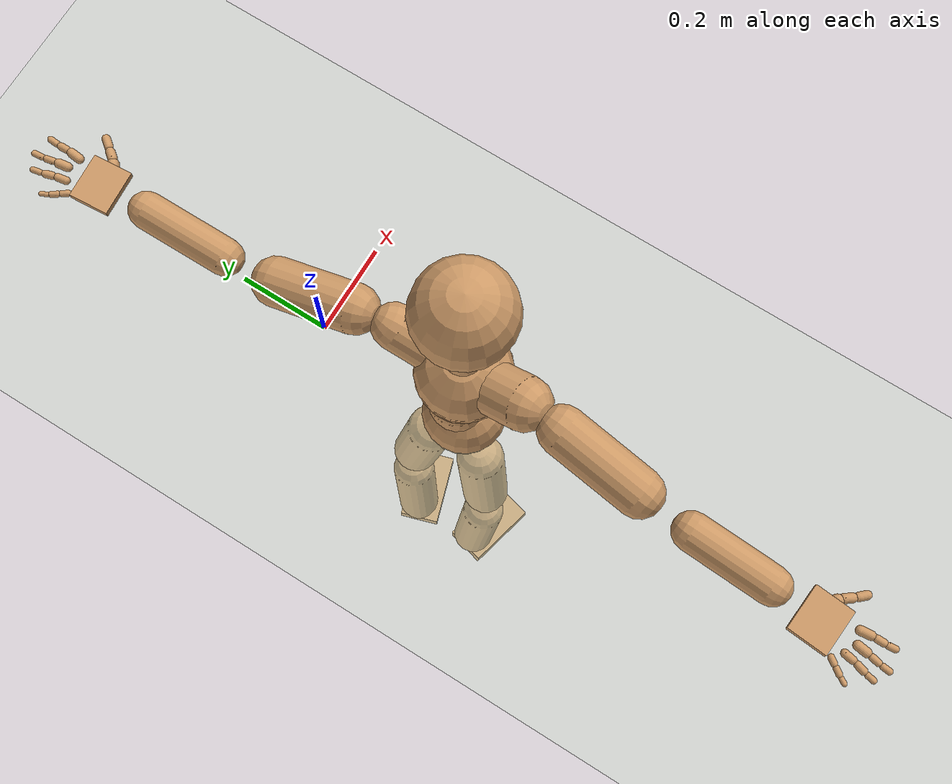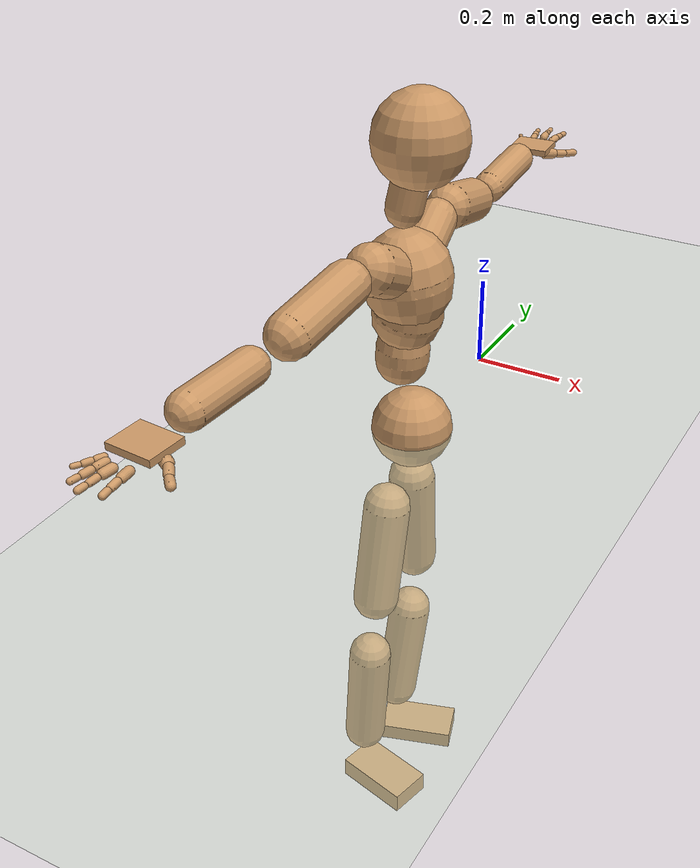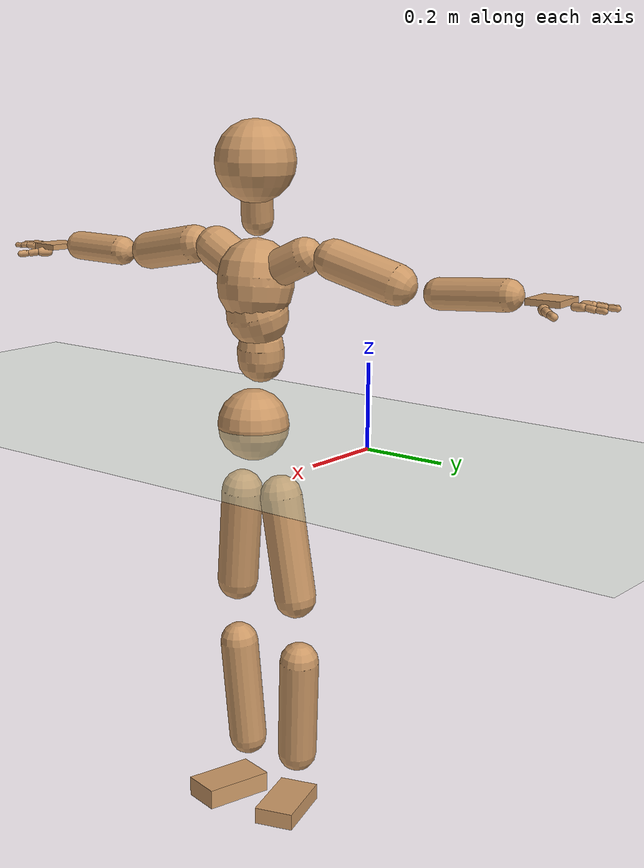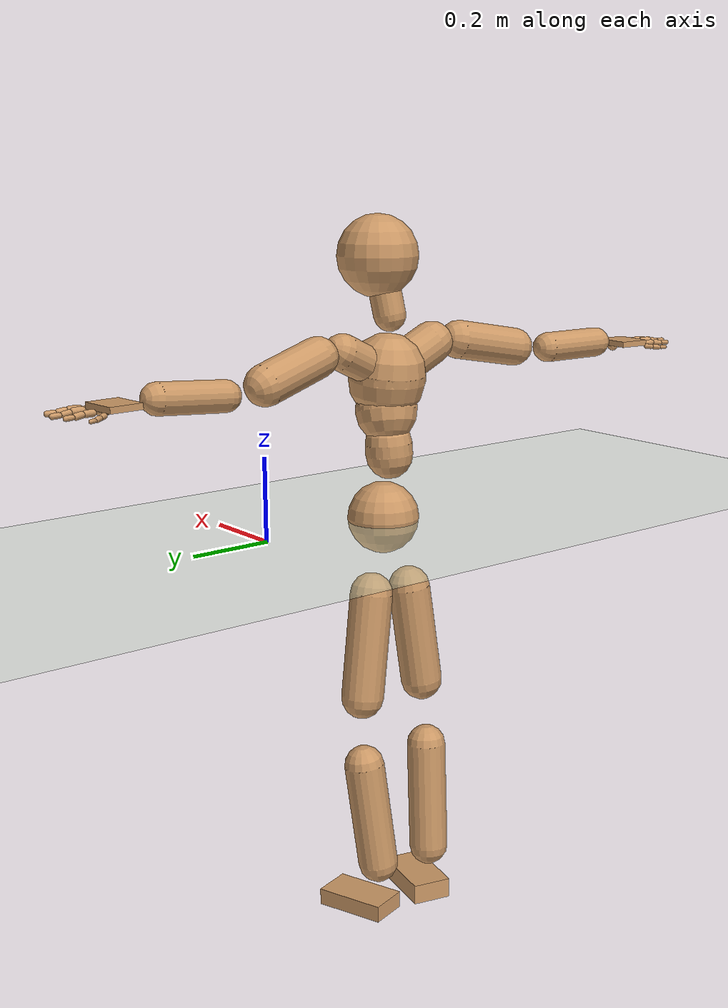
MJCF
<mujoco model="humanoid">
  <compiler coordinate="local" angle="radian"/>
  <default>
    <joint damping="0.0" armature="0.01" stiffness="0.0" limited="true"/>
    <geom conaffinity="1" condim="3" contype="7" margin="0.001" rgba="0.8 0.6 .4 1"/>
  </default>
  <asset>
    <texture type="skybox" builtin="gradient" rgb1=".4 .5 .6" rgb2="0 0 0" width="100" height="100"/>
    <texture builtin="flat" height="1278" mark="cross" markrgb="1 1 1" name="texgeom" random="0.01" rgb1="0.8 0.6 0.4" rgb2="0.8 0.6 0.4" type="cube" width="127"/>
    <texture builtin="checker" height="100" name="texplane" rgb1="0 0 0" rgb2="0.8 0.8 0.8" type="2d" width="100"/>
    <material name="MatPlane" reflectance="0.5" shininess="1" specular="1" texrepeat="60 60" texture="texplane"/>
    <material name="geom" texture="texgeom" texuniform="true"/>
  </asset>
  <worldbody>
    <light cutoff="100" diffuse="1 1 1" dir="-0 0 -1.3" directional="true" exponent="1" pos="0 0 1.3" specular=".1 .1 .1"/>
    <geom conaffinity="1" condim="3" name="floor" pos="0 0 0" rgba="0.8 0.9 0.8 1" size="100 100 .2" type="plane" material="MatPlane"/>
    <body name="Pelvis" pos="0.0005 -0.3444 0.0051">
      <freejoint name="Pelvis"/>
      <geom type="sphere" contype="1" conaffinity="1" density="500" size="0.0879" pos="0.0000 0.0000 0.0000" name="Pelvis"/>
      <body name="L_Hip" pos="-0.0272 0.0498 -0.0909">
        <joint name="L_Hip_x" type="hinge" pos="0 0 0" axis="1 0 0" stiffness="800" damping="80" armature="0.02" range="-180.0000 180.0000"/>
        <joint name="L_Hip_y" type="hinge" pos="0 0 0" axis="0 1 0" stiffness="800" damping="80" armature="0.02" range="-180.0000 180.0000"/>
        <joint name="L_Hip_z" type="hinge" pos="0 0 0" axis="0 0 1" stiffness="800" damping="80" armature="0.02" range="-180.0000 180.0000"/>
        <geom type="capsule" contype="1" conaffinity="1" density="500" fromto="-0.0034 0.0127 -0.0863 -0.0138 0.0508 -0.3453" size="0.0524" name="L_Hip"/>
        <body name="L_Knee" pos="-0.0172 0.0635 -0.4316">
          <joint name="L_Knee_x" type="hinge" pos="0 0 0" axis="1 0 0" stiffness="800" damping="80" armature="0.02" range="-180.0000 180.0000"/>
          <joint name="L_Knee_y" type="hinge" pos="0 0 0" axis="0 1 0" stiffness="800" damping="80" armature="0.02" range="-180.0000 180.0000"/>
          <joint name="L_Knee_z" type="hinge" pos="0 0 0" axis="0 0 1" stiffness="800" damping="80" armature="0.02" range="-180.0000 180.0000"/>
          <geom type="capsule" contype="1" conaffinity="1" density="500" fromto="-0.0077 -0.0081 -0.0889 -0.0309 -0.0322 -0.3555" size="0.0498" name="L_Knee"/>
          <body name="L_Ankle" pos="-0.0386 -0.0403 -0.4444">
            <joint name="L_Ankle_x" type="hinge" pos="0 0 0" axis="1 0 0" stiffness="800" damping="80" armature="0.02" range="-180.0000 180.0000"/>
            <joint name="L_Ankle_y" type="hinge" pos="0 0 0" axis="0 1 0" stiffness="800" damping="80" armature="0.02" range="-180.0000 180.0000"/>
            <joint name="L_Ankle_z" type="hinge" pos="0 0 0" axis="0 0 1" stiffness="800" damping="80" armature="0.02" range="-180.0000 180.0000"/>
            <geom type="box" contype="1" conaffinity="1" density="500" pos="0.0672 0.0211 -0.0326" size="0.0901 0.0499 0.0212" quat="0.9884 0.0000 0.0000 0.1516" name="L_Ankle"/>
            <body name="L_Toe" pos="0.1344 0.0422 -0.0651">
              <joint name="L_Toe_x" type="hinge" pos="0 0 0" axis="1 0 0" stiffness="500" damping="50" armature="0.02" range="-180.0000 180.0000"/>
              <joint name="L_Toe_y" type="hinge" pos="0 0 0" axis="0 1 0" stiffness="500" damping="50" armature="0.02" range="-180.0000 180.0000"/>
              <joint name="L_Toe_z" type="hinge" pos="0 0 0" axis="0 0 1" stiffness="500" damping="50" armature="0.02" range="-180.0000 180.0000"/>
              <geom type="box" contype="1" conaffinity="1" density="500" pos="0.0000 0.0000 0.0321" size="0.001 0.0024 0.001" quat="0.9877 0.0000 0.0000 0.1561" name="L_Toe"/>
            </body>
          </body>
        </body>
      </body>
      <body name="R_Hip" pos="-0.0226 -0.0506 -0.1002">
        <joint name="R_Hip_x" type="hinge" pos="0 0 0" axis="1 0 0" stiffness="800" damping="80" armature="0.02" range="-180.0000 180.0000"/>
        <joint name="R_Hip_y" type="hinge" pos="0 0 0" axis="0 1 0" stiffness="800" damping="80" armature="0.02" range="-180.0000 180.0000"/>
        <joint name="R_Hip_z" type="hinge" pos="0 0 0" axis="0 0 1" stiffness="800" damping="80" armature="0.02" range="-180.0000 180.0000"/>
        <geom type="capsule" contype="1" conaffinity="1" density="500" fromto="-0.0045 -0.0098 -0.0828 -0.0181 -0.0392 -0.3314" size="0.0518" name="R_Hip"/>
        <body name="R_Knee" pos="-0.0227 -0.049 -0.4142">
          <joint name="R_Knee_x" type="hinge" pos="0 0 0" axis="1 0 0" stiffness="800" damping="80" armature="0.02" range="-180.0000 180.0000"/>
          <joint name="R_Knee_y" type="hinge" pos="0 0 0" axis="0 1 0" stiffness="800" damping="80" armature="0.02" range="-180.0000 180.0000"/>
          <joint name="R_Knee_z" type="hinge" pos="0 0 0" axis="0 0 1" stiffness="800" damping="80" armature="0.02" range="-180.0000 180.0000"/>
          <geom type="capsule" contype="1" conaffinity="1" density="500" fromto="-0.0074 0.0031 -0.0920 -0.0297 0.0126 -0.3678" size="0.0491" name="R_Knee"/>
          <body name="R_Ankle" pos="-0.0371 0.0157 -0.4598">
            <joint name="R_Ankle_x" type="hinge" pos="0 0 0" axis="1 0 0" stiffness="800" damping="80" armature="0.02" range="-180.0000 180.0000"/>
            <joint name="R_Ankle_y" type="hinge" pos="0 0 0" axis="0 1 0" stiffness="800" damping="80" armature="0.02" range="-180.0000 180.0000"/>
            <joint name="R_Ankle_z" type="hinge" pos="0 0 0" axis="0 0 1" stiffness="800" damping="80" armature="0.02" range="-180.0000 180.0000"/>
            <geom type="box" contype="1" conaffinity="1" density="500" pos="0.0703 -0.0173 -0.0320" size="0.0901 0.0501 0.0257" quat="0.9927 0.0000 0.0000 -0.1206" name="R_Ankle"/>
            <body name="R_Toe" pos="0.1406 -0.0347 -0.0641">
              <joint name="R_Toe_x" type="hinge" pos="0 0 0" axis="1 0 0" stiffness="500" damping="50" armature="0.02" range="-180.0000 180.0000"/>
              <joint name="R_Toe_y" type="hinge" pos="0 0 0" axis="0 1 0" stiffness="500" damping="50" armature="0.02" range="-180.0000 180.0000"/>
              <joint name="R_Toe_z" type="hinge" pos="0 0 0" axis="0 0 1" stiffness="500" damping="50" armature="0.02" range="-180.0000 180.0000"/>
              <geom type="box" contype="1" conaffinity="1" density="500" pos="0.0000 0.0000 0.0271" size="0.0009 0.0024 0.001" quat="0.9937 0.0000 0.0000 -0.1124" name="R_Toe"/>
            </body>
          </body>
        </body>
      </body>
      <body name="Torso" pos="-0.0295 -0.0002 0.1028">
        <joint name="Torso_x" type="hinge" pos="0 0 0" axis="1 0 0" stiffness="1000" damping="100" armature="0.02" range="-180.0000 180.0000"/>
        <joint name="Torso_y" type="hinge" pos="0 0 0" axis="0 1 0" stiffness="1000" damping="100" armature="0.02" range="-180.0000 180.0000"/>
        <joint name="Torso_z" type="hinge" pos="0 0 0" axis="0 0 1" stiffness="1000" damping="100" armature="0.02" range="-180.0000 180.0000"/>
        <geom type="capsule" contype="1" conaffinity="1" density="500" fromto="0.0045 0.0031 0.0839 0.0030 0.0020 0.0559" size="0.057" name="Torso"/>
        <body name="Spine" pos="0.0076 0.0051 0.1398">
          <joint name="Spine_x" type="hinge" pos="0 0 0" axis="1 0 0" stiffness="1000" damping="100" armature="0.02" range="-180.0000 180.0000"/>
          <joint name="Spine_y" type="hinge" pos="0 0 0" axis="0 1 0" stiffness="1000" damping="100" armature="0.02" range="-180.0000 180.0000"/>
          <joint name="Spine_z" type="hinge" pos="0 0 0" axis="0 0 1" stiffness="1000" damping="100" armature="0.02" range="-180.0000 180.0000"/>
          <geom type="capsule" contype="1" conaffinity="1" density="500" fromto="0.0089 -0.0040 0.0320 0.0059 -0.0027 0.0213" size="0.0751" name="Spine"/>
          <body name="Chest" pos="0.0148 -0.0067 0.0533">
            <joint name="Chest_x" type="hinge" pos="0 0 0" axis="1 0 0" stiffness="1000" damping="100" armature="0.02" range="-180.0000 180.0000"/>
            <joint name="Chest_y" type="hinge" pos="0 0 0" axis="0 1 0" stiffness="1000" damping="100" armature="0.02" range="-180.0000 180.0000"/>
            <joint name="Chest_z" type="hinge" pos="0 0 0" axis="0 0 1" stiffness="1000" damping="100" armature="0.02" range="-180.0000 180.0000"/>
            <geom type="capsule" contype="1" conaffinity="1" density="500" fromto="-0.0073 -0.0009 0.0619 -0.0049 -0.0006 0.0413" size="0.0928" name="Chest"/>
            <body name="Neck" pos="-0.0214 -0.0059 0.1617">
              <joint name="Neck_x" type="hinge" pos="0 0 0" axis="1 0 0" stiffness="500" damping="50" armature="0.02" range="-180.0000 180.0000"/>
              <joint name="Neck_y" type="hinge" pos="0 0 0" axis="0 1 0" stiffness="500" damping="50" armature="0.02" range="-180.0000 180.0000"/>
              <joint name="Neck_z" type="hinge" pos="0 0 0" axis="0 0 1" stiffness="500" damping="50" armature="0.02" range="-180.0000 180.0000"/>
              <geom type="capsule" contype="1" conaffinity="1" density="500" fromto="0.0063 0.0038 0.0342 0.0251 0.0152 0.1368" size="0.0385" name="Neck"/>
              <body name="Head" pos="0.0314 0.019 0.171">
                <joint name="Head_x" type="hinge" pos="0 0 0" axis="1 0 0" stiffness="500" damping="50" armature="0.02" range="-180.0000 180.0000"/>
                <joint name="Head_y" type="hinge" pos="0 0 0" axis="0 1 0" stiffness="500" damping="50" armature="0.02" range="-180.0000 180.0000"/>
                <joint name="Head_z" type="hinge" pos="0 0 0" axis="0 0 1" stiffness="500" damping="50" armature="0.02" range="-180.0000 180.0000"/>
                <geom type="sphere" contype="1" conaffinity="1" density="500" size="0.0968" pos="0.0000 0.0000 0.0000" name="Head"/>
              </body>
            </body>
            <body name="L_Thorax" pos="-0.0058 0.0395 0.0739">
              <joint name="L_Thorax_x" type="hinge" pos="0 0 0" axis="1 0 0" stiffness="500" damping="50" armature="0.02" range="-180.0000 180.0000"/>
              <joint name="L_Thorax_y" type="hinge" pos="0 0 0" axis="0 1 0" stiffness="500" damping="50" armature="0.02" range="-180.0000 180.0000"/>
              <joint name="L_Thorax_z" type="hinge" pos="0 0 0" axis="0 0 1" stiffness="500" damping="50" armature="0.02" range="-180.0000 180.0000"/>
              <geom type="capsule" contype="1" conaffinity="1" density="500" fromto="-0.0027 0.0250 0.0118 -0.0107 0.1001 0.0472" size="0.0442" name="L_Thorax"/>
              <body name="L_Shoulder" pos="-0.0134 0.1251 0.059">
                <joint name="L_Shoulder_x" type="hinge" pos="0 0 0" axis="1 0 0" stiffness="500" damping="50" armature="0.02" range="-180.0000 180.0000"/>
                <joint name="L_Shoulder_y" type="hinge" pos="0 0 0" axis="0 1 0" stiffness="500" damping="50" armature="0.02" range="-180.0000 180.0000"/>
                <joint name="L_Shoulder_z" type="hinge" pos="0 0 0" axis="0 0 1" stiffness="500" damping="50" armature="0.02" range="-180.0000 180.0000"/>
                <geom type="capsule" contype="1" conaffinity="1" density="500" fromto="-0.0070 0.0534 -0.0149 -0.0281 0.2134 -0.0597" size="0.0481" name="L_Shoulder"/>
                <body name="L_Elbow" pos="-0.0351 0.2668 -0.0746">
                  <joint name="L_Elbow_x" type="hinge" pos="0 0 0" axis="1 0 0" stiffness="500" damping="50" armature="0.02" range="-720.0000 720.0000"/>
                  <joint name="L_Elbow_y" type="hinge" pos="0 0 0" axis="0 1 0" stiffness="500" damping="50" armature="0.02" range="-720.0000 720.0000"/>
                  <joint name="L_Elbow_z" type="hinge" pos="0 0 0" axis="0 0 1" stiffness="500" damping="50" armature="0.02" range="-720.0000 720.0000"/>
                  <geom type="capsule" contype="1" conaffinity="1" density="500" fromto="-0.0012 0.0568 0.0042 -0.0046 0.2273 0.0169" size="0.0363" name="L_Elbow"/>
                  <body name="L_Wrist" pos="-0.0058 0.2841 0.0211">
                    <joint name="L_Wrist_x" type="hinge" pos="0 0 0" axis="1 0 0" stiffness="300" damping="30" armature="0.02" range="-180.0000 180.0000"/>
                    <joint name="L_Wrist_y" type="hinge" pos="0 0 0" axis="0 1 0" stiffness="300" damping="30" armature="0.02" range="-180.0000 180.0000"/>
                    <joint name="L_Wrist_z" type="hinge" pos="0 0 0" axis="0 0 1" stiffness="300" damping="30" armature="0.02" range="-180.0000 180.0000"/>
                    <geom type="box" contype="1" conaffinity="1" density="500" pos="-0.0033 0.0456 -0.0063" size="0.04 0.0453 0.0071" quat="0.7322 0.0000 0.0000 -0.6810" name="L_Wrist"/>
                    <body name="L_Index1" pos="0.0187 0.1062 -0.0097">
                      <joint name="L_Index1_x" type="hinge" pos="0 0 0" axis="1 0 0" stiffness="100" damping="10" armature="0.02" range="-180.0000 180.0000"/>
                      <joint name="L_Index1_y" type="hinge" pos="0 0 0" axis="0 1 0" stiffness="100" damping="10" armature="0.02" range="-180.0000 180.0000"/>
                      <joint name="L_Index1_z" type="hinge" pos="0 0 0" axis="0 0 1" stiffness="100" damping="10" armature="0.02" range="-180.0000 180.0000"/>
                      <geom type="capsule" contype="1" conaffinity="1" density="500" fromto="0.0007 0.0066 0.0003 0.0026 0.0264 0.0011" size="0.009" name="L_Index1"/>
                      <body name="L_Index2" pos="0.0033 0.033 0.0013">
                        <joint name="L_Index2_x" type="hinge" pos="0 0 0" axis="1 0 0" stiffness="100" damping="10" armature="0.02" range="-180.0000 180.0000"/>
                        <joint name="L_Index2_y" type="hinge" pos="0 0 0" axis="0 1 0" stiffness="100" damping="10" armature="0.02" range="-180.0000 180.0000"/>
                        <joint name="L_Index2_z" type="hinge" pos="0 0 0" axis="0 0 1" stiffness="100" damping="10" armature="0.02" range="-180.0000 180.0000"/>
                        <geom type="capsule" contype="1" conaffinity="1" density="500" fromto="-0.0000 0.0047 -0.0005 -0.0000 0.0187 -0.0020" size="0.0074" name="L_Index2"/>
                        <body name="L_Index3" pos="-0.0001 0.0233 -0.0025">
                          <joint name="L_Index3_x" type="hinge" pos="0 0 0" axis="1 0 0" stiffness="100" damping="10" armature="0.02" range="-180.0000 180.0000"/>
                          <joint name="L_Index3_y" type="hinge" pos="0 0 0" axis="0 1 0" stiffness="100" damping="10" armature="0.02" range="-180.0000 180.0000"/>
                          <joint name="L_Index3_z" type="hinge" pos="0 0 0" axis="0 0 1" stiffness="100" damping="10" armature="0.02" range="-180.0000 180.0000"/>
                          <geom type="capsule" contype="1" conaffinity="1" density="500" fromto="0.0004 0.0051 -0.0001 0.0016 0.0203 -0.0004" size="0.0064" name="L_Index3"/>
                        </body>
                      </body>
                    </body>
                    <body name="L_Middle1" pos="-0.005 0.1144 -0.0076">
                      <joint name="L_Middle1_x" type="hinge" pos="0 0 0" axis="1 0 0" stiffness="100" damping="10" armature="0.02" range="-180.0000 180.0000"/>
                      <joint name="L_Middle1_y" type="hinge" pos="0 0 0" axis="0 1 0" stiffness="100" damping="10" armature="0.02" range="-180.0000 180.0000"/>
                      <joint name="L_Middle1_z" type="hinge" pos="0 0 0" axis="0 0 1" stiffness="100" damping="10" armature="0.02" range="-180.0000 180.0000"/>
                      <geom type="capsule" contype="1" conaffinity="1" density="500" fromto="-0.0009 0.0063 0.0000 -0.0037 0.0252 0.0001" size="0.0091" name="L_Middle1"/>
                      <body name="L_Middle2" pos="-0.0046 0.0315 0.0001">
                        <joint name="L_Middle2_x" type="hinge" pos="0 0 0" axis="1 0 0" stiffness="100" damping="10" armature="0.02" range="-180.0000 180.0000"/>
                        <joint name="L_Middle2_y" type="hinge" pos="0 0 0" axis="0 1 0" stiffness="100" damping="10" armature="0.02" range="-180.0000 180.0000"/>
                        <joint name="L_Middle2_z" type="hinge" pos="0 0 0" axis="0 0 1" stiffness="100" damping="10" armature="0.02" range="-180.0000 180.0000"/>
                        <geom type="capsule" contype="1" conaffinity="1" density="500" fromto="-0.0009 0.0049 -0.0005 -0.0035 0.0194 -0.0019" size="0.0068" name="L_Middle2"/>
                        <body name="L_Middle3" pos="-0.0044 0.0243 -0.0024">
                          <joint name="L_Middle3_x" type="hinge" pos="0 0 0" axis="1 0 0" stiffness="100" damping="10" armature="0.02" range="-180.0000 180.0000"/>
                          <joint name="L_Middle3_y" type="hinge" pos="0 0 0" axis="0 1 0" stiffness="100" damping="10" armature="0.02" range="-180.0000 180.0000"/>
                          <joint name="L_Middle3_z" type="hinge" pos="0 0 0" axis="0 0 1" stiffness="100" damping="10" armature="0.02" range="-180.0000 180.0000"/>
                          <geom type="capsule" contype="1" conaffinity="1" density="500" fromto="-0.0005 0.0053 -0.0001 -0.0019 0.0210 -0.0003" size="0.0062" name="L_Middle3"/>
                        </body>
                      </body>
                    </body>
                    <body name="L_Pinky1" pos="-0.0441 0.0895 -0.0157">
                      <joint name="L_Pinky1_x" type="hinge" pos="0 0 0" axis="1 0 0" stiffness="100" damping="10" armature="0.02" range="-180.0000 180.0000"/>
                      <joint name="L_Pinky1_y" type="hinge" pos="0 0 0" axis="0 1 0" stiffness="100" damping="10" armature="0.02" range="-180.0000 180.0000"/>
                      <joint name="L_Pinky1_z" type="hinge" pos="0 0 0" axis="0 0 1" stiffness="100" damping="10" armature="0.02" range="-180.0000 180.0000"/>
                      <geom type="capsule" contype="1" conaffinity="1" density="500" fromto="-0.0023 0.0033 -0.0003 -0.0092 0.0133 -0.0012" size="0.0064" name="L_Pinky1"/>
                      <body name="L_Pinky2" pos="-0.0115 0.0167 -0.0015">
                        <joint name="L_Pinky2_x" type="hinge" pos="0 0 0" axis="1 0 0" stiffness="100" damping="10" armature="0.02" range="-180.0000 180.0000"/>
                        <joint name="L_Pinky2_y" type="hinge" pos="0 0 0" axis="0 1 0" stiffness="100" damping="10" armature="0.02" range="-180.0000 180.0000"/>
                        <joint name="L_Pinky2_z" type="hinge" pos="0 0 0" axis="0 0 1" stiffness="100" damping="10" armature="0.02" range="-180.0000 180.0000"/>
                        <geom type="capsule" contype="1" conaffinity="1" density="500" fromto="-0.0022 0.0033 -0.0003 -0.0088 0.0131 -0.0013" size="0.0062" name="L_Pinky2"/>
                        <body name="L_Pinky3" pos="-0.011 0.0163 -0.0016">
                          <joint name="L_Pinky3_x" type="hinge" pos="0 0 0" axis="1 0 0" stiffness="100" damping="10" armature="0.02" range="-180.0000 180.0000"/>
                          <joint name="L_Pinky3_y" type="hinge" pos="0 0 0" axis="0 1 0" stiffness="100" damping="10" armature="0.02" range="-180.0000 180.0000"/>
                          <joint name="L_Pinky3_z" type="hinge" pos="0 0 0" axis="0 0 1" stiffness="100" damping="10" armature="0.02" range="-180.0000 180.0000"/>
                          <geom type="capsule" contype="1" conaffinity="1" density="500" fromto="-0.0018 0.0037 0.0001 -0.0072 0.0147 0.0003" size="0.0048" name="L_Pinky3"/>
                        </body>
                      </body>
                    </body>
                    <body name="L_Ring1" pos="-0.028 0.1027 -0.0106">
                      <joint name="L_Ring1_x" type="hinge" pos="0 0 0" axis="1 0 0" stiffness="100" damping="10" armature="0.02" range="-180.0000 180.0000"/>
                      <joint name="L_Ring1_y" type="hinge" pos="0 0 0" axis="0 1 0" stiffness="100" damping="10" armature="0.02" range="-180.0000 180.0000"/>
                      <joint name="L_Ring1_z" type="hinge" pos="0 0 0" axis="0 0 1" stiffness="100" damping="10" armature="0.02" range="-180.0000 180.0000"/>
                      <geom type="capsule" contype="1" conaffinity="1" density="500" fromto="-0.0010 0.0058 0.0001 -0.0041 0.0233 0.0004" size="0.0077" name="L_Ring1"/>
                      <body name="L_Ring2" pos="-0.0051 0.0291 0.0004">
                        <joint name="L_Ring2_x" type="hinge" pos="0 0 0" axis="1 0 0" stiffness="100" damping="10" armature="0.02" range="-180.0000 180.0000"/>
                        <joint name="L_Ring2_y" type="hinge" pos="0 0 0" axis="0 1 0" stiffness="100" damping="10" armature="0.02" range="-180.0000 180.0000"/>
                        <joint name="L_Ring2_z" type="hinge" pos="0 0 0" axis="0 0 1" stiffness="100" damping="10" armature="0.02" range="-180.0000 180.0000"/>
                        <geom type="capsule" contype="1" conaffinity="1" density="500" fromto="-0.0014 0.0047 -0.0004 -0.0054 0.0190 -0.0017" size="0.0074" name="L_Ring2"/>
                        <body name="L_Ring3" pos="-0.0068 0.0237 -0.0021">
                          <joint name="L_Ring3_x" type="hinge" pos="0 0 0" axis="1 0 0" stiffness="100" damping="10" armature="0.02" range="-180.0000 180.0000"/>
                          <joint name="L_Ring3_y" type="hinge" pos="0 0 0" axis="0 1 0" stiffness="100" damping="10" armature="0.02" range="-180.0000 180.0000"/>
                          <joint name="L_Ring3_z" type="hinge" pos="0 0 0" axis="0 0 1" stiffness="100" damping="10" armature="0.02" range="-180.0000 180.0000"/>
                          <geom type="capsule" contype="1" conaffinity="1" density="500" fromto="-0.0010 0.0051 -0.0000 -0.0038 0.0206 -0.0001" size="0.0058" name="L_Ring3"/>
                        </body>
                      </body>
                    </body>
                    <body name="L_Thumb1" pos="0.0254 0.0431 -0.0196">
                      <joint name="L_Thumb1_x" type="hinge" pos="0 0 0" axis="1 0 0" stiffness="100" damping="10" armature="0.02" range="-180.0000 180.0000"/>
                      <joint name="L_Thumb1_y" type="hinge" pos="0 0 0" axis="0 1 0" stiffness="100" damping="10" armature="0.02" range="-180.0000 180.0000"/>
                      <joint name="L_Thumb1_z" type="hinge" pos="0 0 0" axis="0 0 1" stiffness="100" damping="10" armature="0.02" range="-180.0000 180.0000"/>
                      <geom type="capsule" contype="1" conaffinity="1" density="500" fromto="0.0052 0.0035 0.0002 0.0209 0.0139 0.0008" size="0.0119" name="L_Thumb1"/>
                      <body name="L_Thumb2" pos="0.0262 0.0174 0.001">
                        <joint name="L_Thumb2_x" type="hinge" pos="0 0 0" axis="1 0 0" stiffness="100" damping="10" armature="0.02" range="-180.0000 180.0000"/>
                        <joint name="L_Thumb2_y" type="hinge" pos="0 0 0" axis="0 1 0" stiffness="100" damping="10" armature="0.02" range="-180.0000 180.0000"/>
                        <joint name="L_Thumb2_z" type="hinge" pos="0 0 0" axis="0 0 1" stiffness="100" damping="10" armature="0.02" range="-180.0000 180.0000"/>
                        <geom type="capsule" contype="1" conaffinity="1" density="500" fromto="0.0033 0.0043 -0.0008 0.0133 0.0172 -0.0032" size="0.0093" name="L_Thumb2"/>
                        <body name="L_Thumb3" pos="0.0167 0.0215 -0.004">
                          <joint name="L_Thumb3_x" type="hinge" pos="0 0 0" axis="1 0 0" stiffness="100" damping="10" armature="0.02" range="-180.0000 180.0000"/>
                          <joint name="L_Thumb3_y" type="hinge" pos="0 0 0" axis="0 1 0" stiffness="100" damping="10" armature="0.02" range="-180.0000 180.0000"/>
                          <joint name="L_Thumb3_z" type="hinge" pos="0 0 0" axis="0 0 1" stiffness="100" damping="10" armature="0.02" range="-180.0000 180.0000"/>
                          <geom type="capsule" contype="1" conaffinity="1" density="500" fromto="0.0037 0.0047 -0.0004 0.0149 0.0188 -0.0016" size="0.0085" name="L_Thumb3"/>
                        </body>
                      </body>
                    </body>
                  </body>
                </body>
              </body>
            </body>
            <body name="R_Thorax" pos="-0.0095 -0.0382 0.074">
              <joint name="R_Thorax_x" type="hinge" pos="0 0 0" axis="1 0 0" stiffness="500" damping="50" armature="0.02" range="-180.0000 180.0000"/>
              <joint name="R_Thorax_y" type="hinge" pos="0 0 0" axis="0 1 0" stiffness="500" damping="50" armature="0.02" range="-180.0000 180.0000"/>
              <joint name="R_Thorax_z" type="hinge" pos="0 0 0" axis="0 0 1" stiffness="500" damping="50" armature="0.02" range="-180.0000 180.0000"/>
              <geom type="capsule" contype="1" conaffinity="1" density="500" fromto="-0.0014 -0.0233 0.0118 -0.0055 -0.0934 0.0471" size="0.0518" name="R_Thorax"/>
              <body name="R_Shoulder" pos="-0.0069 -0.1167 0.0589">
                <joint name="R_Shoulder_x" type="hinge" pos="0 0 0" axis="1 0 0" stiffness="500" damping="50" armature="0.02" range="-180.0000 180.0000"/>
                <joint name="R_Shoulder_y" type="hinge" pos="0 0 0" axis="0 1 0" stiffness="500" damping="50" armature="0.02" range="-180.0000 180.0000"/>
                <joint name="R_Shoulder_z" type="hinge" pos="0 0 0" axis="0 0 1" stiffness="500" damping="50" armature="0.02" range="-180.0000 180.0000"/>
                <geom type="capsule" contype="1" conaffinity="1" density="500" fromto="-0.0057 -0.0568 -0.0102 -0.0229 -0.2271 -0.0409" size="0.047" name="R_Shoulder"/>
                <body name="R_Elbow" pos="-0.0286 -0.2839 -0.0512">
                  <joint name="R_Elbow_x" type="hinge" pos="0 0 0" axis="1 0 0" stiffness="500" damping="50" armature="0.02" range="-720.0000 720.0000"/>
                  <joint name="R_Elbow_y" type="hinge" pos="0 0 0" axis="0 1 0" stiffness="500" damping="50" armature="0.02" range="-720.0000 720.0000"/>
                  <joint name="R_Elbow_z" type="hinge" pos="0 0 0" axis="0 0 1" stiffness="500" damping="50" armature="0.02" range="-720.0000 720.0000"/>
                  <geom type="capsule" contype="1" conaffinity="1" density="500" fromto="-0.0029 -0.0549 0.0002 -0.0115 -0.2194 0.0007" size="0.0373" name="R_Elbow"/>
                  <body name="R_Wrist" pos="-0.0144 -0.2743 0.0009">
                    <joint name="R_Wrist_x" type="hinge" pos="0 0 0" axis="1 0 0" stiffness="300" damping="30" armature="0.02" range="-180.0000 180.0000"/>
                    <joint name="R_Wrist_y" type="hinge" pos="0 0 0" axis="0 1 0" stiffness="300" damping="30" armature="0.02" range="-180.0000 180.0000"/>
                    <joint name="R_Wrist_z" type="hinge" pos="0 0 0" axis="0 0 1" stiffness="300" damping="30" armature="0.02" range="-180.0000 180.0000"/>
                    <geom type="box" contype="1" conaffinity="1" density="500" pos="-0.0037 -0.0454 -0.0079" size="0.04 0.0465 0.0072" quat="0.7352 0.0000 0.0000 0.6779" name="R_Wrist"/>
                    <body name="R_Index1" pos="0.0179 -0.1059 -0.0129">
                      <joint name="R_Index1_x" type="hinge" pos="0 0 0" axis="1 0 0" stiffness="100" damping="10" armature="0.02" range="-180.0000 180.0000"/>
                      <joint name="R_Index1_y" type="hinge" pos="0 0 0" axis="0 1 0" stiffness="100" damping="10" armature="0.02" range="-180.0000 180.0000"/>
                      <joint name="R_Index1_z" type="hinge" pos="0 0 0" axis="0 0 1" stiffness="100" damping="10" armature="0.02" range="-180.0000 180.0000"/>
                      <geom type="capsule" contype="1" conaffinity="1" density="500" fromto="0.0007 -0.0066 0.0003 0.0026 -0.0264 0.0011" size="0.009" name="R_Index1"/>
                      <body name="R_Index2" pos="0.0033 -0.033 0.0013">
                        <joint name="R_Index2_x" type="hinge" pos="0 0 0" axis="1 0 0" stiffness="100" damping="10" armature="0.02" range="-180.0000 180.0000"/>
                        <joint name="R_Index2_y" type="hinge" pos="0 0 0" axis="0 1 0" stiffness="100" damping="10" armature="0.02" range="-180.0000 180.0000"/>
                        <joint name="R_Index2_z" type="hinge" pos="0 0 0" axis="0 0 1" stiffness="100" damping="10" armature="0.02" range="-180.0000 180.0000"/>
                        <geom type="capsule" contype="1" conaffinity="1" density="500" fromto="-0.0000 -0.0047 -0.0005 -0.0000 -0.0187 -0.0020" size="0.0074" name="R_Index2"/>
                        <body name="R_Index3" pos="-0.0001 -0.0233 -0.0025">
                          <joint name="R_Index3_x" type="hinge" pos="0 0 0" axis="1 0 0" stiffness="100" damping="10" armature="0.02" range="-180.0000 180.0000"/>
                          <joint name="R_Index3_y" type="hinge" pos="0 0 0" axis="0 1 0" stiffness="100" damping="10" armature="0.02" range="-180.0000 180.0000"/>
                          <joint name="R_Index3_z" type="hinge" pos="0 0 0" axis="0 0 1" stiffness="100" damping="10" armature="0.02" range="-180.0000 180.0000"/>
                          <geom type="capsule" contype="1" conaffinity="1" density="500" fromto="0.0004 -0.0043 -0.0001 0.0016 -0.0171 -0.0004" size="0.0067" name="R_Index3"/>
                        </body>
                      </body>
                    </body>
                    <body name="R_Middle1" pos="-0.0058 -0.1141 -0.0108">
                      <joint name="R_Middle1_x" type="hinge" pos="0 0 0" axis="1 0 0" stiffness="100" damping="10" armature="0.02" range="-180.0000 180.0000"/>
                      <joint name="R_Middle1_y" type="hinge" pos="0 0 0" axis="0 1 0" stiffness="100" damping="10" armature="0.02" range="-180.0000 180.0000"/>
                      <joint name="R_Middle1_z" type="hinge" pos="0 0 0" axis="0 0 1" stiffness="100" damping="10" armature="0.02" range="-180.0000 180.0000"/>
                      <geom type="capsule" contype="1" conaffinity="1" density="500" fromto="-0.0009 -0.0063 0.0000 -0.0037 -0.0252 0.0001" size="0.0091" name="R_Middle1"/>
                      <body name="R_Middle2" pos="-0.0046 -0.0315 0.0001">
                        <joint name="R_Middle2_x" type="hinge" pos="0 0 0" axis="1 0 0" stiffness="100" damping="10" armature="0.02" range="-180.0000 180.0000"/>
                        <joint name="R_Middle2_y" type="hinge" pos="0 0 0" axis="0 1 0" stiffness="100" damping="10" armature="0.02" range="-180.0000 180.0000"/>
                        <joint name="R_Middle2_z" type="hinge" pos="0 0 0" axis="0 0 1" stiffness="100" damping="10" armature="0.02" range="-180.0000 180.0000"/>
                        <geom type="capsule" contype="1" conaffinity="1" density="500" fromto="-0.0009 -0.0049 -0.0005 -0.0035 -0.0194 -0.0019" size="0.0068" name="R_Middle2"/>
                        <body name="R_Middle3" pos="-0.0044 -0.0243 -0.0024">
                          <joint name="R_Middle3_x" type="hinge" pos="0 0 0" axis="1 0 0" stiffness="100" damping="10" armature="0.02" range="-180.0000 180.0000"/>
                          <joint name="R_Middle3_y" type="hinge" pos="0 0 0" axis="0 1 0" stiffness="100" damping="10" armature="0.02" range="-180.0000 180.0000"/>
                          <joint name="R_Middle3_z" type="hinge" pos="0 0 0" axis="0 0 1" stiffness="100" damping="10" armature="0.02" range="-180.0000 180.0000"/>
                          <geom type="capsule" contype="1" conaffinity="1" density="500" fromto="-0.0005 -0.0045 -0.0001 -0.0019 -0.0178 -0.0003" size="0.0064" name="R_Middle3"/>
                        </body>
                      </body>
                    </body>
                    <body name="R_Pinky1" pos="-0.0448 -0.0892 -0.019">
                      <joint name="R_Pinky1_x" type="hinge" pos="0 0 0" axis="1 0 0" stiffness="100" damping="10" armature="0.02" range="-180.0000 180.0000"/>
                      <joint name="R_Pinky1_y" type="hinge" pos="0 0 0" axis="0 1 0" stiffness="100" damping="10" armature="0.02" range="-180.0000 180.0000"/>
                      <joint name="R_Pinky1_z" type="hinge" pos="0 0 0" axis="0 0 1" stiffness="100" damping="10" armature="0.02" range="-180.0000 180.0000"/>
                      <geom type="capsule" contype="1" conaffinity="1" density="500" fromto="-0.0023 -0.0033 -0.0003 -0.0092 -0.0133 -0.0012" size="0.0064" name="R_Pinky1"/>
                      <body name="R_Pinky2" pos="-0.0115 -0.0167 -0.0015">
                        <joint name="R_Pinky2_x" type="hinge" pos="0 0 0" axis="1 0 0" stiffness="100" damping="10" armature="0.02" range="-180.0000 180.0000"/>
                        <joint name="R_Pinky2_y" type="hinge" pos="0 0 0" axis="0 1 0" stiffness="100" damping="10" armature="0.02" range="-180.0000 180.0000"/>
                        <joint name="R_Pinky2_z" type="hinge" pos="0 0 0" axis="0 0 1" stiffness="100" damping="10" armature="0.02" range="-180.0000 180.0000"/>
                        <geom type="capsule" contype="1" conaffinity="1" density="500" fromto="-0.0022 -0.0033 -0.0003 -0.0088 -0.0131 -0.0013" size="0.0062" name="R_Pinky2"/>
                        <body name="R_Pinky3" pos="-0.011 -0.0163 -0.0016">
                          <joint name="R_Pinky3_x" type="hinge" pos="0 0 0" axis="1 0 0" stiffness="100" damping="10" armature="0.02" range="-180.0000 180.0000"/>
                          <joint name="R_Pinky3_y" type="hinge" pos="0 0 0" axis="0 1 0" stiffness="100" damping="10" armature="0.02" range="-180.0000 180.0000"/>
                          <joint name="R_Pinky3_z" type="hinge" pos="0 0 0" axis="0 0 1" stiffness="100" damping="10" armature="0.02" range="-180.0000 180.0000"/>
                          <geom type="capsule" contype="1" conaffinity="1" density="500" fromto="-0.0018 -0.0029 0.0001 -0.0072 -0.0115 0.0003" size="0.005" name="R_Pinky3"/>
                        </body>
                      </body>
                    </body>
                    <body name="R_Ring1" pos="-0.0288 -0.1024 -0.0138">
                      <joint name="R_Ring1_x" type="hinge" pos="0 0 0" axis="1 0 0" stiffness="100" damping="10" armature="0.02" range="-180.0000 180.0000"/>
                      <joint name="R_Ring1_y" type="hinge" pos="0 0 0" axis="0 1 0" stiffness="100" damping="10" armature="0.02" range="-180.0000 180.0000"/>
                      <joint name="R_Ring1_z" type="hinge" pos="0 0 0" axis="0 0 1" stiffness="100" damping="10" armature="0.02" range="-180.0000 180.0000"/>
                      <geom type="capsule" contype="1" conaffinity="1" density="500" fromto="-0.0010 -0.0058 0.0001 -0.0041 -0.0233 0.0004" size="0.0077" name="R_Ring1"/>
                      <body name="R_Ring2" pos="-0.0051 -0.0291 0.0004">
                        <joint name="R_Ring2_x" type="hinge" pos="0 0 0" axis="1 0 0" stiffness="100" damping="10" armature="0.02" range="-180.0000 180.0000"/>
                        <joint name="R_Ring2_y" type="hinge" pos="0 0 0" axis="0 1 0" stiffness="100" damping="10" armature="0.02" range="-180.0000 180.0000"/>
                        <joint name="R_Ring2_z" type="hinge" pos="0 0 0" axis="0 0 1" stiffness="100" damping="10" armature="0.02" range="-180.0000 180.0000"/>
                        <geom type="capsule" contype="1" conaffinity="1" density="500" fromto="-0.0014 -0.0047 -0.0004 -0.0054 -0.0190 -0.0017" size="0.0074" name="R_Ring2"/>
                        <body name="R_Ring3" pos="-0.0068 -0.0237 -0.0021">
                          <joint name="R_Ring3_x" type="hinge" pos="0 0 0" axis="1 0 0" stiffness="100" damping="10" armature="0.02" range="-180.0000 180.0000"/>
                          <joint name="R_Ring3_y" type="hinge" pos="0 0 0" axis="0 1 0" stiffness="100" damping="10" armature="0.02" range="-180.0000 180.0000"/>
                          <joint name="R_Ring3_z" type="hinge" pos="0 0 0" axis="0 0 1" stiffness="100" damping="10" armature="0.02" range="-180.0000 180.0000"/>
                          <geom type="capsule" contype="1" conaffinity="1" density="500" fromto="-0.0010 -0.0043 -0.0000 -0.0038 -0.0174 -0.0001" size="0.006" name="R_Ring3"/>
                        </body>
                      </body>
                    </body>
                    <body name="R_Thumb1" pos="0.0246 -0.0428 -0.0228">
                      <joint name="R_Thumb1_x" type="hinge" pos="0 0 0" axis="1 0 0" stiffness="100" damping="10" armature="0.02" range="-180.0000 180.0000"/>
                      <joint name="R_Thumb1_y" type="hinge" pos="0 0 0" axis="0 1 0" stiffness="100" damping="10" armature="0.02" range="-180.0000 180.0000"/>
                      <joint name="R_Thumb1_z" type="hinge" pos="0 0 0" axis="0 0 1" stiffness="100" damping="10" armature="0.02" range="-180.0000 180.0000"/>
                      <geom type="capsule" contype="1" conaffinity="1" density="500" fromto="0.0052 -0.0035 0.0002 0.0209 -0.0139 0.0008" size="0.0119" name="R_Thumb1"/>
                      <body name="R_Thumb2" pos="0.0262 -0.0174 0.001">
                        <joint name="R_Thumb2_x" type="hinge" pos="0 0 0" axis="1 0 0" stiffness="100" damping="10" armature="0.02" range="-180.0000 180.0000"/>
                        <joint name="R_Thumb2_y" type="hinge" pos="0 0 0" axis="0 1 0" stiffness="100" damping="10" armature="0.02" range="-180.0000 180.0000"/>
                        <joint name="R_Thumb2_z" type="hinge" pos="0 0 0" axis="0 0 1" stiffness="100" damping="10" armature="0.02" range="-180.0000 180.0000"/>
                        <geom type="capsule" contype="1" conaffinity="1" density="500" fromto="0.0033 -0.0043 -0.0008 0.0133 -0.0172 -0.0032" size="0.0093" name="R_Thumb2"/>
                        <body name="R_Thumb3" pos="0.0167 -0.0215 -0.004">
                          <joint name="R_Thumb3_x" type="hinge" pos="0 0 0" axis="1 0 0" stiffness="100" damping="10" armature="0.02" range="-180.0000 180.0000"/>
                          <joint name="R_Thumb3_y" type="hinge" pos="0 0 0" axis="0 1 0" stiffness="100" damping="10" armature="0.02" range="-180.0000 180.0000"/>
                          <joint name="R_Thumb3_z" type="hinge" pos="0 0 0" axis="0 0 1" stiffness="100" damping="10" armature="0.02" range="-180.0000 180.0000"/>
                          <geom type="capsule" contype="1" conaffinity="1" density="500" fromto="0.0037 -0.0039 -0.0004 0.0149 -0.0156 -0.0016" size="0.0087" name="R_Thumb3"/>
                        </body>
                      </body>
                    </body>
                  </body>
                </body>
              </body>
            </body>
          </body>
        </body>
      </body>
    </body>
  </worldbody>
  <actuator>
    <motor name="L_Hip_x" joint="L_Hip_x" gear="500"/>
    <motor name="L_Hip_y" joint="L_Hip_y" gear="500"/>
    <motor name="L_Hip_z" joint="L_Hip_z" gear="500"/>
    <motor name="L_Knee_x" joint="L_Knee_x" gear="500"/>
    <motor name="L_Knee_y" joint="L_Knee_y" gear="500"/>
    <motor name="L_Knee_z" joint="L_Knee_z" gear="500"/>
    <motor name="L_Ankle_x" joint="L_Ankle_x" gear="500"/>
    <motor name="L_Ankle_y" joint="L_Ankle_y" gear="500"/>
    <motor name="L_Ankle_z" joint="L_Ankle_z" gear="500"/>
    <motor name="L_Toe_x" joint="L_Toe_x" gear="500"/>
    <motor name="L_Toe_y" joint="L_Toe_y" gear="500"/>
    <motor name="L_Toe_z" joint="L_Toe_z" gear="500"/>
    <motor name="R_Hip_x" joint="R_Hip_x" gear="500"/>
    <motor name="R_Hip_y" joint="R_Hip_y" gear="500"/>
    <motor name="R_Hip_z" joint="R_Hip_z" gear="500"/>
    <motor name="R_Knee_x" joint="R_Knee_x" gear="500"/>
    <motor name="R_Knee_y" joint="R_Knee_y" gear="500"/>
    <motor name="R_Knee_z" joint="R_Knee_z" gear="500"/>
    <motor name="R_Ankle_x" joint="R_Ankle_x" gear="500"/>
    <motor name="R_Ankle_y" joint="R_Ankle_y" gear="500"/>
    <motor name="R_Ankle_z" joint="R_Ankle_z" gear="500"/>
    <motor name="R_Toe_x" joint="R_Toe_x" gear="500"/>
    <motor name="R_Toe_y" joint="R_Toe_y" gear="500"/>
    <motor name="R_Toe_z" joint="R_Toe_z" gear="500"/>
    <motor name="Torso_x" joint="Torso_x" gear="500"/>
    <motor name="Torso_y" joint="Torso_y" gear="500"/>
    <motor name="Torso_z" joint="Torso_z" gear="500"/>
    <motor name="Spine_x" joint="Spine_x" gear="500"/>
    <motor name="Spine_y" joint="Spine_y" gear="500"/>
    <motor name="Spine_z" joint="Spine_z" gear="500"/>
    <motor name="Chest_x" joint="Chest_x" gear="500"/>
    <motor name="Chest_y" joint="Chest_y" gear="500"/>
    <motor name="Chest_z" joint="Chest_z" gear="500"/>
    <motor name="Neck_x" joint="Neck_x" gear="500"/>
    <motor name="Neck_y" joint="Neck_y" gear="500"/>
    <motor name="Neck_z" joint="Neck_z" gear="500"/>
    <motor name="Head_x" joint="Head_x" gear="500"/>
    <motor name="Head_y" joint="Head_y" gear="500"/>
    <motor name="Head_z" joint="Head_z" gear="500"/>
    <motor name="L_Thorax_x" joint="L_Thorax_x" gear="500"/>
    <motor name="L_Thorax_y" joint="L_Thorax_y" gear="500"/>
    <motor name="L_Thorax_z" joint="L_Thorax_z" gear="500"/>
    <motor name="L_Shoulder_x" joint="L_Shoulder_x" gear="500"/>
    <motor name="L_Shoulder_y" joint="L_Shoulder_y" gear="500"/>
    <motor name="L_Shoulder_z" joint="L_Shoulder_z" gear="500"/>
    <motor name="L_Elbow_x" joint="L_Elbow_x" gear="500"/>
    <motor name="L_Elbow_y" joint="L_Elbow_y" gear="500"/>
    <motor name="L_Elbow_z" joint="L_Elbow_z" gear="500"/>
    <motor name="L_Wrist_x" joint="L_Wrist_x" gear="500"/>
    <motor name="L_Wrist_y" joint="L_Wrist_y" gear="500"/>
    <motor name="L_Wrist_z" joint="L_Wrist_z" gear="500"/>
    <motor name="L_Index1_x" joint="L_Index1_x" gear="500"/>
    <motor name="L_Index1_y" joint="L_Index1_y" gear="500"/>
    <motor name="L_Index1_z" joint="L_Index1_z" gear="500"/>
    <motor name="L_Index2_x" joint="L_Index2_x" gear="500"/>
    <motor name="L_Index2_y" joint="L_Index2_y" gear="500"/>
    <motor name="L_Index2_z" joint="L_Index2_z" gear="500"/>
    <motor name="L_Index3_x" joint="L_Index3_x" gear="500"/>
    <motor name="L_Index3_y" joint="L_Index3_y" gear="500"/>
    <motor name="L_Index3_z" joint="L_Index3_z" gear="500"/>
    <motor name="L_Middle1_x" joint="L_Middle1_x" gear="500"/>
    <motor name="L_Middle1_y" joint="L_Middle1_y" gear="500"/>
    <motor name="L_Middle1_z" joint="L_Middle1_z" gear="500"/>
    <motor name="L_Middle2_x" joint="L_Middle2_x" gear="500"/>
    <motor name="L_Middle2_y" joint="L_Middle2_y" gear="500"/>
    <motor name="L_Middle2_z" joint="L_Middle2_z" gear="500"/>
    <motor name="L_Middle3_x" joint="L_Middle3_x" gear="500"/>
    <motor name="L_Middle3_y" joint="L_Middle3_y" gear="500"/>
    <motor name="L_Middle3_z" joint="L_Middle3_z" gear="500"/>
    <motor name="L_Pinky1_x" joint="L_Pinky1_x" gear="500"/>
    <motor name="L_Pinky1_y" joint="L_Pinky1_y" gear="500"/>
    <motor name="L_Pinky1_z" joint="L_Pinky1_z" gear="500"/>
    <motor name="L_Pinky2_x" joint="L_Pinky2_x" gear="500"/>
    <motor name="L_Pinky2_y" joint="L_Pinky2_y" gear="500"/>
    <motor name="L_Pinky2_z" joint="L_Pinky2_z" gear="500"/>
    <motor name="L_Pinky3_x" joint="L_Pinky3_x" gear="500"/>
    <motor name="L_Pinky3_y" joint="L_Pinky3_y" gear="500"/>
    <motor name="L_Pinky3_z" joint="L_Pinky3_z" gear="500"/>
    <motor name="L_Ring1_x" joint="L_Ring1_x" gear="500"/>
    <motor name="L_Ring1_y" joint="L_Ring1_y" gear="500"/>
    <motor name="L_Ring1_z" joint="L_Ring1_z" gear="500"/>
    <motor name="L_Ring2_x" joint="L_Ring2_x" gear="500"/>
    <motor name="L_Ring2_y" joint="L_Ring2_y" gear="500"/>
    <motor name="L_Ring2_z" joint="L_Ring2_z" gear="500"/>
    <motor name="L_Ring3_x" joint="L_Ring3_x" gear="500"/>
    <motor name="L_Ring3_y" joint="L_Ring3_y" gear="500"/>
    <motor name="L_Ring3_z" joint="L_Ring3_z" gear="500"/>
    <motor name="L_Thumb1_x" joint="L_Thumb1_x" gear="500"/>
    <motor name="L_Thumb1_y" joint="L_Thumb1_y" gear="500"/>
    <motor name="L_Thumb1_z" joint="L_Thumb1_z" gear="500"/>
    <motor name="L_Thumb2_x" joint="L_Thumb2_x" gear="500"/>
    <motor name="L_Thumb2_y" joint="L_Thumb2_y" gear="500"/>
    <motor name="L_Thumb2_z" joint="L_Thumb2_z" gear="500"/>
    <motor name="L_Thumb3_x" joint="L_Thumb3_x" gear="500"/>
    <motor name="L_Thumb3_y" joint="L_Thumb3_y" gear="500"/>
    <motor name="L_Thumb3_z" joint="L_Thumb3_z" gear="500"/>
    <motor name="R_Thorax_x" joint="R_Thorax_x" gear="500"/>
    <motor name="R_Thorax_y" joint="R_Thorax_y" gear="500"/>
    <motor name="R_Thorax_z" joint="R_Thorax_z" gear="500"/>
    <motor name="R_Shoulder_x" joint="R_Shoulder_x" gear="500"/>
    <motor name="R_Shoulder_y" joint="R_Shoulder_y" gear="500"/>
    <motor name="R_Shoulder_z" joint="R_Shoulder_z" gear="500"/>
    <motor name="R_Elbow_x" joint="R_Elbow_x" gear="500"/>
    <motor name="R_Elbow_y" joint="R_Elbow_y" gear="500"/>
    <motor name="R_Elbow_z" joint="R_Elbow_z" gear="500"/>
    <motor name="R_Wrist_x" joint="R_Wrist_x" gear="500"/>
    <motor name="R_Wrist_y" joint="R_Wrist_y" gear="500"/>
    <motor name="R_Wrist_z" joint="R_Wrist_z" gear="500"/>
    <motor name="R_Index1_x" joint="R_Index1_x" gear="500"/>
    <motor name="R_Index1_y" joint="R_Index1_y" gear="500"/>
    <motor name="R_Index1_z" joint="R_Index1_z" gear="500"/>
    <motor name="R_Index2_x" joint="R_Index2_x" gear="500"/>
    <motor name="R_Index2_y" joint="R_Index2_y" gear="500"/>
    <motor name="R_Index2_z" joint="R_Index2_z" gear="500"/>
    <motor name="R_Index3_x" joint="R_Index3_x" gear="500"/>
    <motor name="R_Index3_y" joint="R_Index3_y" gear="500"/>
    <motor name="R_Index3_z" joint="R_Index3_z" gear="500"/>
    <motor name="R_Middle1_x" joint="R_Middle1_x" gear="500"/>
    <motor name="R_Middle1_y" joint="R_Middle1_y" gear="500"/>
    <motor name="R_Middle1_z" joint="R_Middle1_z" gear="500"/>
    <motor name="R_Middle2_x" joint="R_Middle2_x" gear="500"/>
    <motor name="R_Middle2_y" joint="R_Middle2_y" gear="500"/>
    <motor name="R_Middle2_z" joint="R_Middle2_z" gear="500"/>
    <motor name="R_Middle3_x" joint="R_Middle3_x" gear="500"/>
    <motor name="R_Middle3_y" joint="R_Middle3_y" gear="500"/>
    <motor name="R_Middle3_z" joint="R_Middle3_z" gear="500"/>
    <motor name="R_Pinky1_x" joint="R_Pinky1_x" gear="500"/>
    <motor name="R_Pinky1_y" joint="R_Pinky1_y" gear="500"/>
    <motor name="R_Pinky1_z" joint="R_Pinky1_z" gear="500"/>
    <motor name="R_Pinky2_x" joint="R_Pinky2_x" gear="500"/>
    <motor name="R_Pinky2_y" joint="R_Pinky2_y" gear="500"/>
    <motor name="R_Pinky2_z" joint="R_Pinky2_z" gear="500"/>
    <motor name="R_Pinky3_x" joint="R_Pinky3_x" gear="500"/>
    <motor name="R_Pinky3_y" joint="R_Pinky3_y" gear="500"/>
    <motor name="R_Pinky3_z" joint="R_Pinky3_z" gear="500"/>
    <motor name="R_Ring1_x" joint="R_Ring1_x" gear="500"/>
    <motor name="R_Ring1_y" joint="R_Ring1_y" gear="500"/>
    <motor name="R_Ring1_z" joint="R_Ring1_z" gear="500"/>
    <motor name="R_Ring2_x" joint="R_Ring2_x" gear="500"/>
    <motor name="R_Ring2_y" joint="R_Ring2_y" gear="500"/>
    <motor name="R_Ring2_z" joint="R_Ring2_z" gear="500"/>
    <motor name="R_Ring3_x" joint="R_Ring3_x" gear="500"/>
    <motor name="R_Ring3_y" joint="R_Ring3_y" gear="500"/>
    <motor name="R_Ring3_z" joint="R_Ring3_z" gear="500"/>
    <motor name="R_Thumb1_x" joint="R_Thumb1_x" gear="500"/>
    <motor name="R_Thumb1_y" joint="R_Thumb1_y" gear="500"/>
    <motor name="R_Thumb1_z" joint="R_Thumb1_z" gear="500"/>
    <motor name="R_Thumb2_x" joint="R_Thumb2_x" gear="500"/>
    <motor name="R_Thumb2_y" joint="R_Thumb2_y" gear="500"/>
    <motor name="R_Thumb2_z" joint="R_Thumb2_z" gear="500"/>
    <motor name="R_Thumb3_x" joint="R_Thumb3_x" gear="500"/>
    <motor name="R_Thumb3_y" joint="R_Thumb3_y" gear="500"/>
    <motor name="R_Thumb3_z" joint="R_Thumb3_z" gear="500"/>
  </actuator>
  <contact>
    <exclude body1="Torso" body2="Chest"/>
    <exclude body1="Head" body2="Chest"/>
    <exclude body1="R_Knee" body2="R_Toe"/>
    <exclude body1="R_Knee" body2="L_Ankle"/>
    <exclude body1="R_Knee" body2="L_Toe"/>
    <exclude body1="L_Knee" body2="L_Toe"/>
    <exclude body1="L_Knee" body2="R_Ankle"/>
    <exclude body1="L_Knee" body2="R_Toe"/>
    <exclude body1="L_Shoulder" body2="Chest"/>
    <exclude body1="R_Shoulder" body2="Chest"/>
  </contact>
  <sensor/>
  <size njmax="700" nconmax="700"/>
</mujoco>
